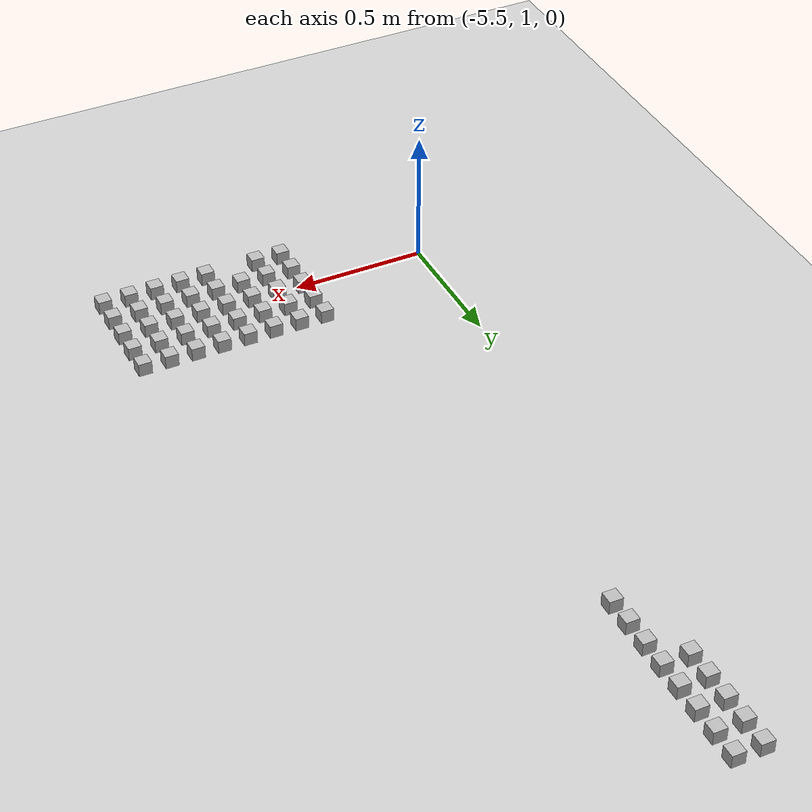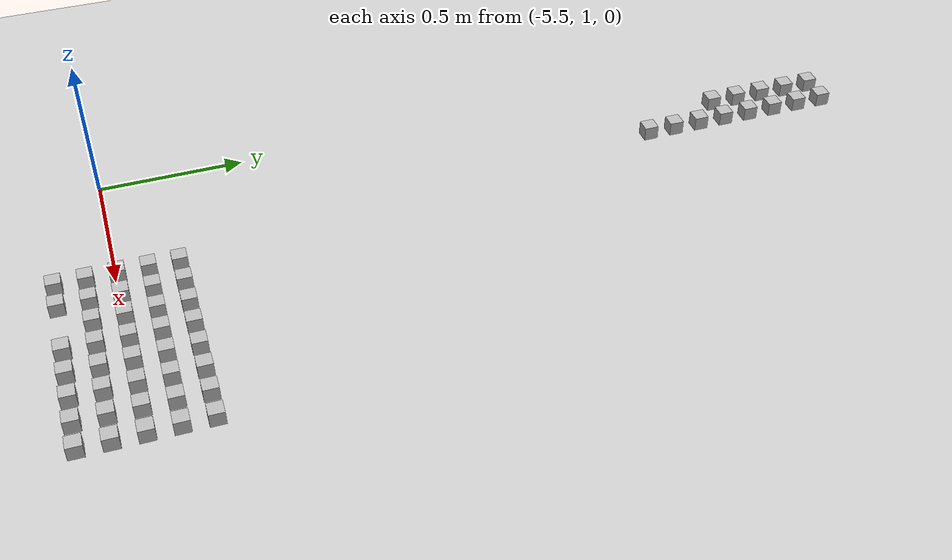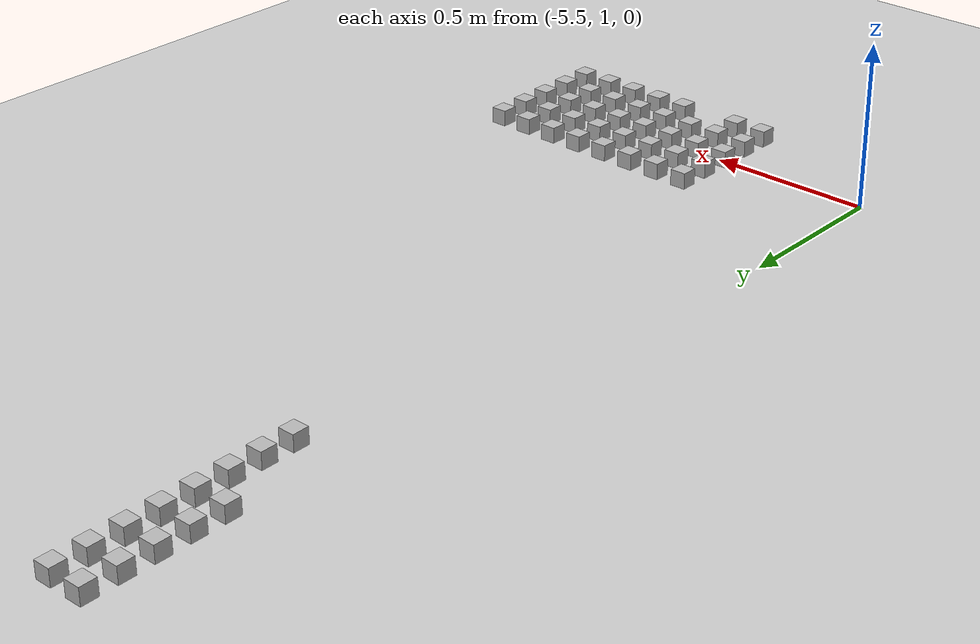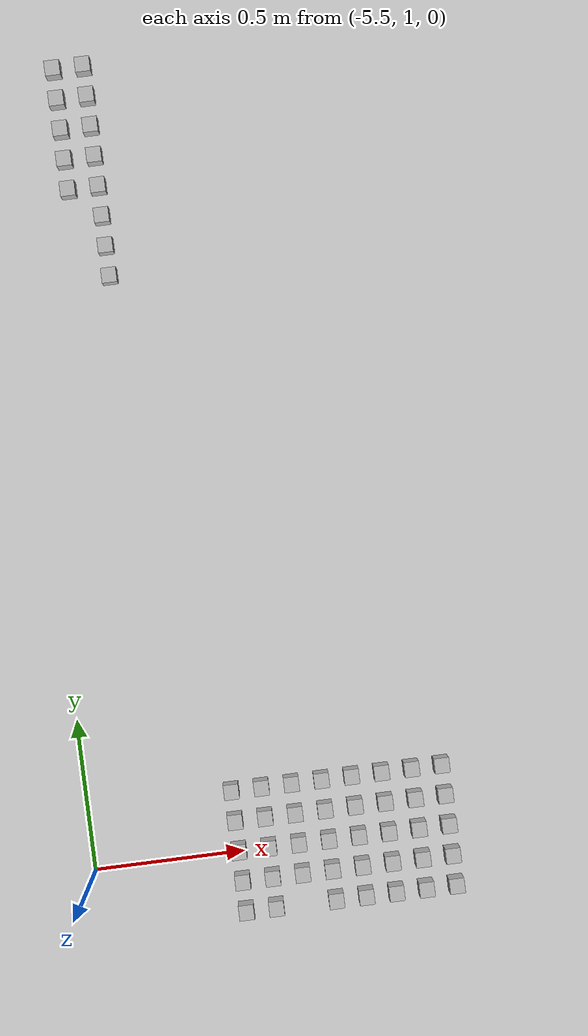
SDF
<sdf version="1.4">
 <world name="default">
  <model name="ground_plane">
   <static>1</static>
   <link name="link">
    <collision name="collision">
     <geometry><plane><normal>0 0 1</normal><size>100 100</size></plane></geometry>
     <surface><friction><ode><mu>100</mu><mu2>50</mu2></ode></friction></surface>
    </collision>
    <visual name="visual">
     <cast_shadows>0</cast_shadows>
     <geometry><plane><normal>0 0 1</normal><size>100 100</size></plane></geometry>
     <material>
      <script><uri>file://media/materials/scripts/gazebo.material</uri><name>Gazebo/Grey</name></script>
     </material>
    </visual>
    <velocity_decay><linear>0</linear><angular>0</angular></velocity_decay>
   </link>
  </model>
  <model name="at24">
   <static>0</static>
   <link name="link">
    <inertial>
     <mass>0.01</mass>
     <inertia><ixx>4e-05</ixx><ixy>0</ixy><ixz>0</ixz><iyy>4e-05</iyy><iyz>0</iyz><izz>4e-05</izz></inertia>
    </inertial>
    <visual name="visual">
     <transparency>0.1</transparency>
     <geometry><box><size>0.05 0.05 0.05</size></box></geometry>
     <material>
      <script>
       <uri>model://at0/materials/scripts</uri>
       <uri>model://at0/materials/textures</uri>
       <name>at0/Diffuse</name>
      </script>
     </material>
    </visual>
    <collision name="collision">
     <geometry><box><size>0.05 0.05 0.05</size></box></geometry>
     <surface><friction><ode><mu>0.8</mu><mu2>0.7</mu2></ode></friction></surface>
    </collision>
    <velocity_decay><linear>0</linear><angular>0</angular></velocity_decay>
   </link>
   <pose>-5.01833 0.809653 0.024993 -2.9e-05 -2.9e-05 6e-06</pose>
  </model>
  <model name="at25">
   <static>0</static>
   <link name="link">
    <inertial>
     <mass>0.01</mass>
     <inertia><ixx>4e-05</ixx><ixy>0</ixy><ixz>0</ixz><iyy>4e-05</iyy><iyz>0</iyz><izz>4e-05</izz></inertia>
    </inertial>
    <visual name="visual">
     <transparency>0.1</transparency>
     <geometry><box><size>0.05 0.05 0.05</size></box></geometry>
     <material>
      <script>
       <uri>model://at0/materials/scripts</uri>
       <uri>model://at0/materials/textures</uri>
       <name>at0/Diffuse</name>
      </script>
     </material>
    </visual>
    <collision name="collision">
     <geometry><box><size>0.05 0.05 0.05</size></box></geometry>
     <surface><friction><ode><mu>0.8</mu><mu2>0.7</mu2></ode></friction></surface>
    </collision>
    <velocity_decay><linear>0</linear><angular>0</angular></velocity_decay>
   </link>
   <pose>-4.91833 0.809653 0.024993 -2.9e-05 -2.9e-05 6e-06</pose>
  </model>
  <model name="at27">
   <static>0</static>
   <link name="link">
    <inertial>
     <mass>0.01</mass>
     <inertia><ixx>4e-05</ixx><ixy>0</ixy><ixz>0</ixz><iyy>4e-05</iyy><iyz>0</iyz><izz>4e-05</izz></inertia>
    </inertial>
    <visual name="visual">
     <transparency>0.1</transparency>
     <geometry><box><size>0.05 0.05 0.05</size></box></geometry>
     <material>
      <script>
       <uri>model://at0/materials/scripts</uri>
       <uri>model://at0/materials/textures</uri>
       <name>at0/Diffuse</name>
      </script>
     </material>
    </visual>
    <collision name="collision">
     <geometry><box><size>0.05 0.05 0.05</size></box></geometry>
     <surface><friction><ode><mu>0.8</mu><mu2>0.7</mu2></ode></friction></surface>
    </collision>
    <velocity_decay><linear>0</linear><angular>0</angular></velocity_decay>
   </link>
   <pose>-4.71833 0.809652 0.024997 2.9e-05 2.9e-05 6e-06</pose>
  </model>
  <model name="at28">
   <static>0</static>
   <link name="link">
    <inertial>
     <mass>0.01</mass>
     <inertia><ixx>4e-05</ixx><ixy>0</ixy><ixz>0</ixz><iyy>4e-05</iyy><iyz>0</iyz><izz>4e-05</izz></inertia>
    </inertial>
    <visual name="visual">
     <transparency>0.1</transparency>
     <geometry><box><size>0.05 0.05 0.05</size></box></geometry>
     <material>
      <script>
       <uri>model://at0/materials/scripts</uri>
       <uri>model://at0/materials/textures</uri>
       <name>at0/Diffuse</name>
      </script>
     </material>
    </visual>
    <collision name="collision">
     <geometry><box><size>0.05 0.05 0.05</size></box></geometry>
     <surface><friction><ode><mu>0.8</mu><mu2>0.7</mu2></ode></friction></surface>
    </collision>
    <velocity_decay><linear>0</linear><angular>0</angular></velocity_decay>
   </link>
   <pose>-4.61833 0.809652 0.024997 2.9e-05 2.9e-05 6e-06</pose>
  </model>
  <model name="at29">
   <static>0</static>
   <link name="link">
    <inertial>
     <mass>0.01</mass>
     <inertia><ixx>4e-05</ixx><ixy>0</ixy><ixz>0</ixz><iyy>4e-05</iyy><iyz>0</iyz><izz>4e-05</izz></inertia>
    </inertial>
    <visual name="visual">
     <transparency>0.1</transparency>
     <geometry><box><size>0.05 0.05 0.05</size></box></geometry>
     <material>
      <script>
       <uri>model://at0/materials/scripts</uri>
       <uri>model://at0/materials/textures</uri>
       <name>at0/Diffuse</name>
      </script>
     </material>
    </visual>
    <collision name="collision">
     <geometry><box><size>0.05 0.05 0.05</size></box></geometry>
     <surface><friction><ode><mu>0.8</mu><mu2>0.7</mu2></ode></friction></surface>
    </collision>
    <velocity_decay><linear>0</linear><angular>0</angular></velocity_decay>
   </link>
   <pose>-4.51833 0.809652 0.024997 2.9e-05 2.9e-05 6e-06</pose>
  </model>
  <model name="at30">
   <static>0</static>
   <link name="link">
    <inertial>
     <mass>0.01</mass>
     <inertia><ixx>4e-05</ixx><ixy>0</ixy><ixz>0</ixz><iyy>4e-05</iyy><iyz>0</iyz><izz>4e-05</izz></inertia>
    </inertial>
    <visual name="visual">
     <transparency>0.1</transparency>
     <geometry><box><size>0.05 0.05 0.05</size></box></geometry>
     <material>
      <script>
       <uri>model://at0/materials/scripts</uri>
       <uri>model://at0/materials/textures</uri>
       <name>at0/Diffuse</name>
      </script>
     </material>
    </visual>
    <collision name="collision">
     <geometry><box><size>0.05 0.05 0.05</size></box></geometry>
     <surface><friction><ode><mu>0.8</mu><mu2>0.7</mu2></ode></friction></surface>
    </collision>
    <velocity_decay><linear>0</linear><angular>0</angular></velocity_decay>
   </link>
   <pose>-4.41833 0.809653 0.024993 -2.9e-05 -2.9e-05 6e-06</pose>
  </model>
  <model name="at31">
   <static>0</static>
   <link name="link">
    <inertial>
     <mass>0.01</mass>
     <inertia><ixx>4e-05</ixx><ixy>0</ixy><ixz>0</ixz><iyy>4e-05</iyy><iyz>0</iyz><izz>4e-05</izz></inertia>
    </inertial>
    <visual name="visual">
     <transparency>0.1</transparency>
     <geometry><box><size>0.05 0.05 0.05</size></box></geometry>
     <material>
      <script>
       <uri>model://at0/materials/scripts</uri>
       <uri>model://at0/materials/textures</uri>
       <name>at0/Diffuse</name>
      </script>
     </material>
    </visual>
    <collision name="collision">
     <geometry><box><size>0.05 0.05 0.05</size></box></geometry>
     <surface><friction><ode><mu>0.8</mu><mu2>0.7</mu2></ode></friction></surface>
    </collision>
    <velocity_decay><linear>0</linear><angular>0</angular></velocity_decay>
   </link>
   <pose>-4.31833 0.809652 0.024997 2.9e-05 2.9e-05 6e-06</pose>
  </model>
  <model name="at32">
   <static>0</static>
   <link name="link">
    <inertial>
     <mass>0.01</mass>
     <inertia><ixx>4e-05</ixx><ixy>0</ixy><ixz>0</ixz><iyy>4e-05</iyy><iyz>0</iyz><izz>4e-05</izz></inertia>
    </inertial>
    <visual name="visual">
     <transparency>0.1</transparency>
     <geometry><box><size>0.05 0.05 0.05</size></box></geometry>
     <material>
      <script>
       <uri>model://at0/materials/scripts</uri>
       <uri>model://at0/materials/textures</uri>
       <name>at0/Diffuse</name>
      </script>
     </material>
    </visual>
    <collision name="collision">
     <geometry><box><size>0.05 0.05 0.05</size></box></geometry>
     <surface><friction><ode><mu>0.8</mu><mu2>0.7</mu2></ode></friction></surface>
    </collision>
    <velocity_decay><linear>0</linear><angular>0</angular></velocity_decay>
   </link>
   <pose>-5.01833 0.909652 0.024997 2.9e-05 2.9e-05 5e-06</pose>
  </model>
  <model name="at33">
   <static>0</static>
   <link name="link">
    <inertial>
     <mass>0.01</mass>
     <inertia><ixx>4e-05</ixx><ixy>0</ixy><ixz>0</ixz><iyy>4e-05</iyy><iyz>0</iyz><izz>4e-05</izz></inertia>
    </inertial>
    <visual name="visual">
     <transparency>0.1</transparency>
     <geometry><box><size>0.05 0.05 0.05</size></box></geometry>
     <material>
      <script>
       <uri>model://at0/materials/scripts</uri>
       <uri>model://at0/materials/textures</uri>
       <name>at0/Diffuse</name>
      </script>
     </material>
    </visual>
    <collision name="collision">
     <geometry><box><size>0.05 0.05 0.05</size></box></geometry>
     <surface><friction><ode><mu>0.8</mu><mu2>0.7</mu2></ode></friction></surface>
    </collision>
    <velocity_decay><linear>0</linear><angular>0</angular></velocity_decay>
   </link>
   <pose>-4.91833 0.909652 0.024997 2.9e-05 2.9e-05 5e-06</pose>
  </model>
  <model name="at34">
   <static>0</static>
   <link name="link">
    <inertial>
     <mass>0.01</mass>
     <inertia><ixx>4e-05</ixx><ixy>0</ixy><ixz>0</ixz><iyy>4e-05</iyy><iyz>0</iyz><izz>4e-05</izz></inertia>
    </inertial>
    <visual name="visual">
     <transparency>0.1</transparency>
     <geometry><box><size>0.05 0.05 0.05</size></box></geometry>
     <material>
      <script>
       <uri>model://at0/materials/scripts</uri>
       <uri>model://at0/materials/textures</uri>
       <name>at0/Diffuse</name>
      </script>
     </material>
    </visual>
    <collision name="collision">
     <geometry><box><size>0.05 0.05 0.05</size></box></geometry>
     <surface><friction><ode><mu>0.8</mu><mu2>0.7</mu2></ode></friction></surface>
    </collision>
    <velocity_decay><linear>0</linear><angular>0</angular></velocity_decay>
   </link>
   <pose>-4.81833 0.909652 0.024997 2.9e-05 2.9e-05 5e-06</pose>
  </model>
  <model name="at35">
   <static>0</static>
   <link name="link">
    <inertial>
     <mass>0.01</mass>
     <inertia><ixx>4e-05</ixx><ixy>0</ixy><ixz>0</ixz><iyy>4e-05</iyy><iyz>0</iyz><izz>4e-05</izz></inertia>
    </inertial>
    <visual name="visual">
     <transparency>0.1</transparency>
     <geometry><box><size>0.05 0.05 0.05</size></box></geometry>
     <material>
      <script>
       <uri>model://at0/materials/scripts</uri>
       <uri>model://at0/materials/textures</uri>
       <name>at0/Diffuse</name>
      </script>
     </material>
    </visual>
    <collision name="collision">
     <geometry><box><size>0.05 0.05 0.05</size></box></geometry>
     <surface><friction><ode><mu>0.8</mu><mu2>0.7</mu2></ode></friction></surface>
    </collision>
    <velocity_decay><linear>0</linear><angular>0</angular></velocity_decay>
   </link>
   <pose>-4.71833 0.909653 0.024993 -2.9e-05 -2.9e-05 5e-06</pose>
  </model>
  <model name="at36">
   <static>0</static>
   <link name="link">
    <inertial>
     <mass>0.01</mass>
     <inertia><ixx>4e-05</ixx><ixy>0</ixy><ixz>0</ixz><iyy>4e-05</iyy><iyz>0</iyz><izz>4e-05</izz></inertia>
    </inertial>
    <visual name="visual">
     <transparency>0.1</transparency>
     <geometry><box><size>0.05 0.05 0.05</size></box></geometry>
     <material>
      <script>
       <uri>model://at0/materials/scripts</uri>
       <uri>model://at0/materials/textures</uri>
       <name>at0/Diffuse</name>
      </script>
     </material>
    </visual>
    <collision name="collision">
     <geometry><box><size>0.05 0.05 0.05</size></box></geometry>
     <surface><friction><ode><mu>0.8</mu><mu2>0.7</mu2></ode></friction></surface>
    </collision>
    <velocity_decay><linear>0</linear><angular>0</angular></velocity_decay>
   </link>
   <pose>-4.61833 0.909652 0.024997 2.9e-05 2.9e-05 5e-06</pose>
  </model>
  <model name="at37">
   <static>0</static>
   <link name="link">
    <inertial>
     <mass>0.01</mass>
     <inertia><ixx>4e-05</ixx><ixy>0</ixy><ixz>0</ixz><iyy>4e-05</iyy><iyz>0</iyz><izz>4e-05</izz></inertia>
    </inertial>
    <visual name="visual">
     <transparency>0.1</transparency>
     <geometry><box><size>0.05 0.05 0.05</size></box></geometry>
     <material>
      <script>
       <uri>model://at0/materials/scripts</uri>
       <uri>model://at0/materials/textures</uri>
       <name>at0/Diffuse</name>
      </script>
     </material>
    </visual>
    <collision name="collision">
     <geometry><box><size>0.05 0.05 0.05</size></box></geometry>
     <surface><friction><ode><mu>0.8</mu><mu2>0.7</mu2></ode></friction></surface>
    </collision>
    <velocity_decay><linear>0</linear><angular>0</angular></velocity_decay>
   </link>
   <pose>-4.51833 0.909653 0.024993 -2.9e-05 -2.9e-05 5e-06</pose>
  </model>
  <model name="at38">
   <static>0</static>
   <link name="link">
    <inertial>
     <mass>0.01</mass>
     <inertia><ixx>4e-05</ixx><ixy>0</ixy><ixz>0</ixz><iyy>4e-05</iyy><iyz>0</iyz><izz>4e-05</izz></inertia>
    </inertial>
    <visual name="visual">
     <transparency>0.1</transparency>
     <geometry><box><size>0.05 0.05 0.05</size></box></geometry>
     <material>
      <script>
       <uri>model://at0/materials/scripts</uri>
       <uri>model://at0/materials/textures</uri>
       <name>at0/Diffuse</name>
      </script>
     </material>
    </visual>
    <collision name="collision">
     <geometry><box><size>0.05 0.05 0.05</size></box></geometry>
     <surface><friction><ode><mu>0.8</mu><mu2>0.7</mu2></ode></friction></surface>
    </collision>
    <velocity_decay><linear>0</linear><angular>0</angular></velocity_decay>
   </link>
   <pose>-4.41833 0.909653 0.024993 -2.9e-05 -2.9e-05 5e-06</pose>
  </model>
  <model name="at39">
   <static>0</static>
   <link name="link">
    <inertial>
     <mass>0.01</mass>
     <inertia><ixx>4e-05</ixx><ixy>0</ixy><ixz>0</ixz><iyy>4e-05</iyy><iyz>0</iyz><izz>4e-05</izz></inertia>
    </inertial>
    <visual name="visual">
     <transparency>0.1</transparency>
     <geometry><box><size>0.05 0.05 0.05</size></box></geometry>
     <material>
      <script>
       <uri>model://at0/materials/scripts</uri>
       <uri>model://at0/materials/textures</uri>
       <name>at0/Diffuse</name>
      </script>
     </material>
    </visual>
    <collision name="collision">
     <geometry><box><size>0.05 0.05 0.05</size></box></geometry>
     <surface><friction><ode><mu>0.8</mu><mu2>0.7</mu2></ode></friction></surface>
    </collision>
    <velocity_decay><linear>0</linear><angular>0</angular></velocity_decay>
   </link>
   <pose>-4.31833 0.909653 0.024993 -2.9e-05 -2.9e-05 5e-06</pose>
  </model>
  <model name="at40">
   <static>0</static>
   <link name="link">
    <inertial>
     <mass>0.01</mass>
     <inertia><ixx>4e-05</ixx><ixy>0</ixy><ixz>0</ixz><iyy>4e-05</iyy><iyz>0</iyz><izz>4e-05</izz></inertia>
    </inertial>
    <visual name="visual">
     <transparency>0.1</transparency>
     <geometry><box><size>0.05 0.05 0.05</size></box></geometry>
     <material>
      <script>
       <uri>model://at0/materials/scripts</uri>
       <uri>model://at0/materials/textures</uri>
       <name>at0/Diffuse</name>
      </script>
     </material>
    </visual>
    <collision name="collision">
     <geometry><box><size>0.05 0.05 0.05</size></box></geometry>
     <surface><friction><ode><mu>0.8</mu><mu2>0.7</mu2></ode></friction></surface>
    </collision>
    <velocity_decay><linear>0</linear><angular>0</angular></velocity_decay>
   </link>
   <pose>-5.01833 1.00965 0.024997 2.9e-05 2.9e-05 5e-06</pose>
  </model>
  <model name="at41">
   <static>0</static>
   <link name="link">
    <inertial>
     <mass>0.01</mass>
     <inertia><ixx>4e-05</ixx><ixy>0</ixy><ixz>0</ixz><iyy>4e-05</iyy><iyz>0</iyz><izz>4e-05</izz></inertia>
    </inertial>
    <visual name="visual">
     <transparency>0.1</transparency>
     <geometry><box><size>0.05 0.05 0.05</size></box></geometry>
     <material>
      <script>
       <uri>model://at0/materials/scripts</uri>
       <uri>model://at0/materials/textures</uri>
       <name>at0/Diffuse</name>
      </script>
     </material>
    </visual>
    <collision name="collision">
     <geometry><box><size>0.05 0.05 0.05</size></box></geometry>
     <surface><friction><ode><mu>0.8</mu><mu2>0.7</mu2></ode></friction></surface>
    </collision>
    <velocity_decay><linear>0</linear><angular>0</angular></velocity_decay>
   </link>
   <pose>-4.91833 1.00965 0.024997 2.9e-05 2.9e-05 5e-06</pose>
  </model>
  <model name="at42">
   <static>0</static>
   <link name="link">
    <inertial>
     <mass>0.01</mass>
     <inertia><ixx>4e-05</ixx><ixy>0</ixy><ixz>0</ixz><iyy>4e-05</iyy><iyz>0</iyz><izz>4e-05</izz></inertia>
    </inertial>
    <visual name="visual">
     <transparency>0.1</transparency>
     <geometry><box><size>0.05 0.05 0.05</size></box></geometry>
     <material>
      <script>
       <uri>model://at0/materials/scripts</uri>
       <uri>model://at0/materials/textures</uri>
       <name>at0/Diffuse</name>
      </script>
     </material>
    </visual>
    <collision name="collision">
     <geometry><box><size>0.05 0.05 0.05</size></box></geometry>
     <surface><friction><ode><mu>0.8</mu><mu2>0.7</mu2></ode></friction></surface>
    </collision>
    <velocity_decay><linear>0</linear><angular>0</angular></velocity_decay>
   </link>
   <pose>-4.81833 1.00965 0.024997 2.9e-05 2.9e-05 5e-06</pose>
  </model>
  <model name="at43">
   <static>0</static>
   <link name="link">
    <inertial>
     <mass>0.01</mass>
     <inertia><ixx>4e-05</ixx><ixy>0</ixy><ixz>0</ixz><iyy>4e-05</iyy><iyz>0</iyz><izz>4e-05</izz></inertia>
    </inertial>
    <visual name="visual">
     <transparency>0.1</transparency>
     <geometry><box><size>0.05 0.05 0.05</size></box></geometry>
     <material>
      <script>
       <uri>model://at0/materials/scripts</uri>
       <uri>model://at0/materials/textures</uri>
       <name>at0/Diffuse</name>
      </script>
     </material>
    </visual>
    <collision name="collision">
     <geometry><box><size>0.05 0.05 0.05</size></box></geometry>
     <surface><friction><ode><mu>0.8</mu><mu2>0.7</mu2></ode></friction></surface>
    </collision>
    <velocity_decay><linear>0</linear><angular>0</angular></velocity_decay>
   </link>
   <pose>-4.71833 1.00965 0.024997 2.9e-05 2.9e-05 5e-06</pose>
  </model>
  <model name="at44">
   <static>0</static>
   <link name="link">
    <inertial>
     <mass>0.01</mass>
     <inertia><ixx>4e-05</ixx><ixy>0</ixy><ixz>0</ixz><iyy>4e-05</iyy><iyz>0</iyz><izz>4e-05</izz></inertia>
    </inertial>
    <visual name="visual">
     <transparency>0.1</transparency>
     <geometry><box><size>0.05 0.05 0.05</size></box></geometry>
     <material>
      <script>
       <uri>model://at0/materials/scripts</uri>
       <uri>model://at0/materials/textures</uri>
       <name>at0/Diffuse</name>
      </script>
     </material>
    </visual>
    <collision name="collision">
     <geometry><box><size>0.05 0.05 0.05</size></box></geometry>
     <surface><friction><ode><mu>0.8</mu><mu2>0.7</mu2></ode></friction></surface>
    </collision>
    <velocity_decay><linear>0</linear><angular>0</angular></velocity_decay>
   </link>
   <pose>-4.61833 1.00965 0.024997 2.9e-05 2.9e-05 5e-06</pose>
  </model>
  <model name="at45">
   <static>0</static>
   <link name="link">
    <inertial>
     <mass>0.01</mass>
     <inertia><ixx>4e-05</ixx><ixy>0</ixy><ixz>0</ixz><iyy>4e-05</iyy><iyz>0</iyz><izz>4e-05</izz></inertia>
    </inertial>
    <visual name="visual">
     <transparency>0.1</transparency>
     <geometry><box><size>0.05 0.05 0.05</size></box></geometry>
     <material>
      <script>
       <uri>model://at0/materials/scripts</uri>
       <uri>model://at0/materials/textures</uri>
       <name>at0/Diffuse</name>
      </script>
     </material>
    </visual>
    <collision name="collision">
     <geometry><box><size>0.05 0.05 0.05</size></box></geometry>
     <surface><friction><ode><mu>0.8</mu><mu2>0.7</mu2></ode></friction></surface>
    </collision>
    <velocity_decay><linear>0</linear><angular>0</angular></velocity_decay>
   </link>
   <pose>-4.51833 1.00965 0.024993 -2.9e-05 -2.9e-05 5e-06</pose>
  </model>
  <model name="at46">
   <static>0</static>
   <link name="link">
    <inertial>
     <mass>0.01</mass>
     <inertia><ixx>4e-05</ixx><ixy>0</ixy><ixz>0</ixz><iyy>4e-05</iyy><iyz>0</iyz><izz>4e-05</izz></inertia>
    </inertial>
    <visual name="visual">
     <transparency>0.1</transparency>
     <geometry><box><size>0.05 0.05 0.05</size></box></geometry>
     <material>
      <script>
       <uri>model://at0/materials/scripts</uri>
       <uri>model://at0/materials/textures</uri>
       <name>at0/Diffuse</name>
      </script>
     </material>
    </visual>
    <collision name="collision">
     <geometry><box><size>0.05 0.05 0.05</size></box></geometry>
     <surface><friction><ode><mu>0.8</mu><mu2>0.7</mu2></ode></friction></surface>
    </collision>
    <velocity_decay><linear>0</linear><angular>0</angular></velocity_decay>
   </link>
   <pose>-4.41833 1.00965 0.024993 -2.9e-05 -2.9e-05 5e-06</pose>
  </model>
  <model name="at47">
   <static>0</static>
   <link name="link">
    <inertial>
     <mass>0.01</mass>
     <inertia><ixx>4e-05</ixx><ixy>0</ixy><ixz>0</ixz><iyy>4e-05</iyy><iyz>0</iyz><izz>4e-05</izz></inertia>
    </inertial>
    <visual name="visual">
     <transparency>0.1</transparency>
     <geometry><box><size>0.05 0.05 0.05</size></box></geometry>
     <material>
      <script>
       <uri>model://at0/materials/scripts</uri>
       <uri>model://at0/materials/textures</uri>
       <name>at0/Diffuse</name>
      </script>
     </material>
    </visual>
    <collision name="collision">
     <geometry><box><size>0.05 0.05 0.05</size></box></geometry>
     <surface><friction><ode><mu>0.8</mu><mu2>0.7</mu2></ode></friction></surface>
    </collision>
    <velocity_decay><linear>0</linear><angular>0</angular></velocity_decay>
   </link>
   <pose>-4.31833 1.00965 0.024997 2.9e-05 2.9e-05 5e-06</pose>
  </model>
  <model name="at48">
   <static>0</static>
   <link name="link">
    <inertial>
     <mass>0.01</mass>
     <inertia><ixx>4e-05</ixx><ixy>0</ixy><ixz>0</ixz><iyy>4e-05</iyy><iyz>0</iyz><izz>4e-05</izz></inertia>
    </inertial>
    <visual name="visual">
     <transparency>0.1</transparency>
     <geometry><box><size>0.05 0.05 0.05</size></box></geometry>
     <material>
      <script>
       <uri>model://at0/materials/scripts</uri>
       <uri>model://at0/materials/textures</uri>
       <name>at0/Diffuse</name>
      </script>
     </material>
    </visual>
    <collision name="collision">
     <geometry><box><size>0.05 0.05 0.05</size></box></geometry>
     <surface><friction><ode><mu>0.8</mu><mu2>0.7</mu2></ode></friction></surface>
    </collision>
    <velocity_decay><linear>0</linear><angular>0</angular></velocity_decay>
   </link>
   <pose>-5.01833 1.10965 0.024993 -2.9e-05 -2.9e-05 5e-06</pose>
  </model>
  <model name="at49">
   <static>0</static>
   <link name="link">
    <inertial>
     <mass>0.01</mass>
     <inertia><ixx>4e-05</ixx><ixy>0</ixy><ixz>0</ixz><iyy>4e-05</iyy><iyz>0</iyz><izz>4e-05</izz></inertia>
    </inertial>
    <visual name="visual">
     <transparency>0.1</transparency>
     <geometry><box><size>0.05 0.05 0.05</size></box></geometry>
     <material>
      <script>
       <uri>model://at0/materials/scripts</uri>
       <uri>model://at0/materials/textures</uri>
       <name>at0/Diffuse</name>
      </script>
     </material>
    </visual>
    <collision name="collision">
     <geometry><box><size>0.05 0.05 0.05</size></box></geometry>
     <surface><friction><ode><mu>0.8</mu><mu2>0.7</mu2></ode></friction></surface>
    </collision>
    <velocity_decay><linear>0</linear><angular>0</angular></velocity_decay>
   </link>
   <pose>-4.91833 1.10965 0.024997 2.9e-05 2.9e-05 4e-06</pose>
  </model>
  <model name="at50">
   <static>0</static>
   <link name="link">
    <inertial>
     <mass>0.01</mass>
     <inertia><ixx>4e-05</ixx><ixy>0</ixy><ixz>0</ixz><iyy>4e-05</iyy><iyz>0</iyz><izz>4e-05</izz></inertia>
    </inertial>
    <visual name="visual">
     <transparency>0.1</transparency>
     <geometry><box><size>0.05 0.05 0.05</size></box></geometry>
     <material>
      <script>
       <uri>model://at0/materials/scripts</uri>
       <uri>model://at0/materials/textures</uri>
       <name>at0/Diffuse</name>
      </script>
     </material>
    </visual>
    <collision name="collision">
     <geometry><box><size>0.05 0.05 0.05</size></box></geometry>
     <surface><friction><ode><mu>0.8</mu><mu2>0.7</mu2></ode></friction></surface>
    </collision>
    <velocity_decay><linear>0</linear><angular>0</angular></velocity_decay>
   </link>
   <pose>-4.81833 1.10965 0.024993 -2.9e-05 -2.9e-05 4e-06</pose>
  </model>
  <model name="at51">
   <static>0</static>
   <link name="link">
    <inertial>
     <mass>0.01</mass>
     <inertia><ixx>4e-05</ixx><ixy>0</ixy><ixz>0</ixz><iyy>4e-05</iyy><iyz>0</iyz><izz>4e-05</izz></inertia>
    </inertial>
    <visual name="visual">
     <transparency>0.1</transparency>
     <geometry><box><size>0.05 0.05 0.05</size></box></geometry>
     <material>
      <script>
       <uri>model://at0/materials/scripts</uri>
       <uri>model://at0/materials/textures</uri>
       <name>at0/Diffuse</name>
      </script>
     </material>
    </visual>
    <collision name="collision">
     <geometry><box><size>0.05 0.05 0.05</size></box></geometry>
     <surface><friction><ode><mu>0.8</mu><mu2>0.7</mu2></ode></friction></surface>
    </collision>
    <velocity_decay><linear>0</linear><angular>0</angular></velocity_decay>
   </link>
   <pose>-4.71833 1.10965 0.024993 -2.9e-05 -2.9e-05 4e-06</pose>
  </model>
  <model name="at52">
   <static>0</static>
   <link name="link">
    <inertial>
     <mass>0.01</mass>
     <inertia><ixx>4e-05</ixx><ixy>0</ixy><ixz>0</ixz><iyy>4e-05</iyy><iyz>0</iyz><izz>4e-05</izz></inertia>
    </inertial>
    <visual name="visual">
     <transparency>0.1</transparency>
     <geometry><box><size>0.05 0.05 0.05</size></box></geometry>
     <material>
      <script>
       <uri>model://at0/materials/scripts</uri>
       <uri>model://at0/materials/textures</uri>
       <name>at0/Diffuse</name>
      </script>
     </material>
    </visual>
    <collision name="collision">
     <geometry><box><size>0.05 0.05 0.05</size></box></geometry>
     <surface><friction><ode><mu>0.8</mu><mu2>0.7</mu2></ode></friction></surface>
    </collision>
    <velocity_decay><linear>0</linear><angular>0</angular></velocity_decay>
   </link>
   <pose>-4.61833 1.10965 0.024993 -2.9e-05 -2.9e-05 4e-06</pose>
  </model>
  <model name="at53">
   <static>0</static>
   <link name="link">
    <inertial>
     <mass>0.01</mass>
     <inertia><ixx>4e-05</ixx><ixy>0</ixy><ixz>0</ixz><iyy>4e-05</iyy><iyz>0</iyz><izz>4e-05</izz></inertia>
    </inertial>
    <visual name="visual">
     <transparency>0.1</transparency>
     <geometry><box><size>0.05 0.05 0.05</size></box></geometry>
     <material>
      <script>
       <uri>model://at0/materials/scripts</uri>
       <uri>model://at0/materials/textures</uri>
       <name>at0/Diffuse</name>
      </script>
     </material>
    </visual>
    <collision name="collision">
     <geometry><box><size>0.05 0.05 0.05</size></box></geometry>
     <surface><friction><ode><mu>0.8</mu><mu2>0.7</mu2></ode></friction></surface>
    </collision>
    <velocity_decay><linear>0</linear><angular>0</angular></velocity_decay>
   </link>
   <pose>-4.51833 1.10965 0.024997 2.9e-05 2.9e-05 4e-06</pose>
  </model>
  <model name="at54">
   <static>0</static>
   <link name="link">
    <inertial>
     <mass>0.01</mass>
     <inertia><ixx>4e-05</ixx><ixy>0</ixy><ixz>0</ixz><iyy>4e-05</iyy><iyz>0</iyz><izz>4e-05</izz></inertia>
    </inertial>
    <visual name="visual">
     <transparency>0.1</transparency>
     <geometry><box><size>0.05 0.05 0.05</size></box></geometry>
     <material>
      <script>
       <uri>model://at0/materials/scripts</uri>
       <uri>model://at0/materials/textures</uri>
       <name>at0/Diffuse</name>
      </script>
     </material>
    </visual>
    <collision name="collision">
     <geometry><box><size>0.05 0.05 0.05</size></box></geometry>
     <surface><friction><ode><mu>0.8</mu><mu2>0.7</mu2></ode></friction></surface>
    </collision>
    <velocity_decay><linear>0</linear><angular>0</angular></velocity_decay>
   </link>
   <pose>-4.41833 1.10965 0.024993 -2.9e-05 -2.9e-05 4e-06</pose>
  </model>
  <model name="at55">
   <static>0</static>
   <link name="link">
    <inertial>
     <mass>0.01</mass>
     <inertia><ixx>4e-05</ixx><ixy>0</ixy><ixz>0</ixz><iyy>4e-05</iyy><iyz>0</iyz><izz>4e-05</izz></inertia>
    </inertial>
    <visual name="visual">
     <transparency>0.1</transparency>
     <geometry><box><size>0.05 0.05 0.05</size></box></geometry>
     <material>
      <script>
       <uri>model://at0/materials/scripts</uri>
       <uri>model://at0/materials/textures</uri>
       <name>at0/Diffuse</name>
      </script>
     </material>
    </visual>
    <collision name="collision">
     <geometry><box><size>0.05 0.05 0.05</size></box></geometry>
     <surface><friction><ode><mu>0.8</mu><mu2>0.7</mu2></ode></friction></surface>
    </collision>
    <velocity_decay><linear>0</linear><angular>0</angular></velocity_decay>
   </link>
   <pose>-4.31833 1.10965 0.024997 2.9e-05 2.9e-05 4e-06</pose>
  </model>
  <model name="at56">
   <static>0</static>
   <link name="link">
    <inertial>
     <mass>0.01</mass>
     <inertia><ixx>4e-05</ixx><ixy>0</ixy><ixz>0</ixz><iyy>4e-05</iyy><iyz>0</iyz><izz>4e-05</izz></inertia>
    </inertial>
    <visual name="visual">
     <transparency>0.1</transparency>
     <geometry><box><size>0.05 0.05 0.05</size></box></geometry>
     <material>
      <script>
       <uri>model://at0/materials/scripts</uri>
       <uri>model://at0/materials/textures</uri>
       <name>at0/Diffuse</name>
      </script>
     </material>
    </visual>
    <collision name="collision">
     <geometry><box><size>0.05 0.05 0.05</size></box></geometry>
     <surface><friction><ode><mu>0.8</mu><mu2>0.7</mu2></ode></friction></surface>
    </collision>
    <velocity_decay><linear>0</linear><angular>0</angular></velocity_decay>
   </link>
   <pose>-5.01833 1.20965 0.024997 2.9e-05 2.9e-05 4e-06</pose>
  </model>
  <model name="at57">
   <static>0</static>
   <link name="link">
    <inertial>
     <mass>0.01</mass>
     <inertia><ixx>4e-05</ixx><ixy>0</ixy><ixz>0</ixz><iyy>4e-05</iyy><iyz>0</iyz><izz>4e-05</izz></inertia>
    </inertial>
    <visual name="visual">
     <transparency>0.1</transparency>
     <geometry><box><size>0.05 0.05 0.05</size></box></geometry>
     <material>
      <script>
       <uri>model://at0/materials/scripts</uri>
       <uri>model://at0/materials/textures</uri>
       <name>at0/Diffuse</name>
      </script>
     </material>
    </visual>
    <collision name="collision">
     <geometry><box><size>0.05 0.05 0.05</size></box></geometry>
     <surface><friction><ode><mu>0.8</mu><mu2>0.7</mu2></ode></friction></surface>
    </collision>
    <velocity_decay><linear>0</linear><angular>0</angular></velocity_decay>
   </link>
   <pose>-4.91833 1.20965 0.024993 -2.9e-05 -2.9e-05 4e-06</pose>
  </model>
  <model name="at58">
   <static>0</static>
   <link name="link">
    <inertial>
     <mass>0.01</mass>
     <inertia><ixx>4e-05</ixx><ixy>0</ixy><ixz>0</ixz><iyy>4e-05</iyy><iyz>0</iyz><izz>4e-05</izz></inertia>
    </inertial>
    <visual name="visual">
     <transparency>0.1</transparency>
     <geometry><box><size>0.05 0.05 0.05</size></box></geometry>
     <material>
      <script>
       <uri>model://at0/materials/scripts</uri>
       <uri>model://at0/materials/textures</uri>
       <name>at0/Diffuse</name>
      </script>
     </material>
    </visual>
    <collision name="collision">
     <geometry><box><size>0.05 0.05 0.05</size></box></geometry>
     <surface><friction><ode><mu>0.8</mu><mu2>0.7</mu2></ode></friction></surface>
    </collision>
    <velocity_decay><linear>0</linear><angular>0</angular></velocity_decay>
   </link>
   <pose>-4.81833 1.20965 0.024993 -2.9e-05 -2.9e-05 4e-06</pose>
  </model>
  <model name="at59">
   <static>0</static>
   <link name="link">
    <inertial>
     <mass>0.01</mass>
     <inertia><ixx>4e-05</ixx><ixy>0</ixy><ixz>0</ixz><iyy>4e-05</iyy><iyz>0</iyz><izz>4e-05</izz></inertia>
    </inertial>
    <visual name="visual">
     <transparency>0.1</transparency>
     <geometry><box><size>0.05 0.05 0.05</size></box></geometry>
     <material>
      <script>
       <uri>model://at0/materials/scripts</uri>
       <uri>model://at0/materials/textures</uri>
       <name>at0/Diffuse</name>
      </script>
     </material>
    </visual>
    <collision name="collision">
     <geometry><box><size>0.05 0.05 0.05</size></box></geometry>
     <surface><friction><ode><mu>0.8</mu><mu2>0.7</mu2></ode></friction></surface>
    </collision>
    <velocity_decay><linear>0</linear><angular>0</angular></velocity_decay>
   </link>
   <pose>-4.71833 1.20965 0.024997 2.9e-05 2.9e-05 4e-06</pose>
  </model>
  <model name="at60">
   <static>0</static>
   <link name="link">
    <inertial>
     <mass>0.01</mass>
     <inertia><ixx>4e-05</ixx><ixy>0</ixy><ixz>0</ixz><iyy>4e-05</iyy><iyz>0</iyz><izz>4e-05</izz></inertia>
    </inertial>
    <visual name="visual">
     <transparency>0.1</transparency>
     <geometry><box><size>0.05 0.05 0.05</size></box></geometry>
     <material>
      <script>
       <uri>model://at0/materials/scripts</uri>
       <uri>model://at0/materials/textures</uri>
       <name>at0/Diffuse</name>
      </script>
     </material>
    </visual>
    <collision name="collision">
     <geometry><box><size>0.05 0.05 0.05</size></box></geometry>
     <surface><friction><ode><mu>0.8</mu><mu2>0.7</mu2></ode></friction></surface>
    </collision>
    <velocity_decay><linear>0</linear><angular>0</angular></velocity_decay>
   </link>
   <pose>-4.61833 1.20965 0.024993 -2.9e-05 -2.9e-05 4e-06</pose>
  </model>
  <model name="at61">
   <static>0</static>
   <link name="link">
    <inertial>
     <mass>0.01</mass>
     <inertia><ixx>4e-05</ixx><ixy>0</ixy><ixz>0</ixz><iyy>4e-05</iyy><iyz>0</iyz><izz>4e-05</izz></inertia>
    </inertial>
    <visual name="visual">
     <transparency>0.1</transparency>
     <geometry><box><size>0.05 0.05 0.05</size></box></geometry>
     <material>
      <script>
       <uri>model://at0/materials/scripts</uri>
       <uri>model://at0/materials/textures</uri>
       <name>at0/Diffuse</name>
      </script>
     </material>
    </visual>
    <collision name="collision">
     <geometry><box><size>0.05 0.05 0.05</size></box></geometry>
     <surface><friction><ode><mu>0.8</mu><mu2>0.7</mu2></ode></friction></surface>
    </collision>
    <velocity_decay><linear>0</linear><angular>0</angular></velocity_decay>
   </link>
   <pose>-4.51833 1.20965 0.024993 -2.9e-05 -2.9e-05 4e-06</pose>
  </model>
  <model name="at62">
   <static>0</static>
   <link name="link">
    <inertial>
     <mass>0.01</mass>
     <inertia><ixx>4e-05</ixx><ixy>0</ixy><ixz>0</ixz><iyy>4e-05</iyy><iyz>0</iyz><izz>4e-05</izz></inertia>
    </inertial>
    <visual name="visual">
     <transparency>0.1</transparency>
     <geometry><box><size>0.05 0.05 0.05</size></box></geometry>
     <material>
      <script>
       <uri>model://at0/materials/scripts</uri>
       <uri>model://at0/materials/textures</uri>
       <name>at0/Diffuse</name>
      </script>
     </material>
    </visual>
    <collision name="collision">
     <geometry><box><size>0.05 0.05 0.05</size></box></geometry>
     <surface><friction><ode><mu>0.8</mu><mu2>0.7</mu2></ode></friction></surface>
    </collision>
    <velocity_decay><linear>0</linear><angular>0</angular></velocity_decay>
   </link>
   <pose>-4.41833 1.20965 0.024993 -2.9e-05 -2.9e-05 4e-06</pose>
  </model>
  <model name="at63">
   <static>0</static>
   <link name="link">
    <inertial>
     <mass>0.01</mass>
     <inertia><ixx>4e-05</ixx><ixy>0</ixy><ixz>0</ixz><iyy>4e-05</iyy><iyz>0</iyz><izz>4e-05</izz></inertia>
    </inertial>
    <visual name="visual">
     <transparency>0.1</transparency>
     <geometry><box><size>0.05 0.05 0.05</size></box></geometry>
     <material>
      <script>
       <uri>model://at0/materials/scripts</uri>
       <uri>model://at0/materials/textures</uri>
       <name>at0/Diffuse</name>
      </script>
     </material>
    </visual>
    <collision name="collision">
     <geometry><box><size>0.05 0.05 0.05</size></box></geometry>
     <surface><friction><ode><mu>0.8</mu><mu2>0.7</mu2></ode></friction></surface>
    </collision>
    <velocity_decay><linear>0</linear><angular>0</angular></velocity_decay>
   </link>
   <pose>-4.31833 1.20965 0.024997 2.9e-05 2.9e-05 4e-06</pose>
  </model>
  <model name="at135">
   <static>0</static>
   <link name="link">
    <inertial>
     <mass>0.01</mass>
     <inertia><ixx>4e-05</ixx><ixy>0</ixy><ixz>0</ixz><iyy>4e-05</iyy><iyz>0</iyz><izz>4e-05</izz></inertia>
    </inertial>
    <visual name="visual">
     <transparency>0.1</transparency>
     <geometry><box><size>0.05 0.05 0.05</size></box></geometry>
     <material>
      <script>
       <uri>model://at0/materials/scripts</uri>
       <uri>model://at0/materials/textures</uri>
       <name>at0/Diffuse</name>
      </script>
     </material>
    </visual>
    <collision name="collision">
     <geometry><box><size>0.05 0.05 0.05</size></box></geometry>
     <surface><friction><ode><mu>0.8</mu><mu2>0.7</mu2></ode></friction></surface>
    </collision>
    <velocity_decay><linear>0</linear><angular>0</angular></velocity_decay>
   </link>
   <pose>-5.20443 2.95036 0.024993 -2.9e-05 -2.9e-05 2e-06</pose>
  </model>
  <model name="at143">
   <static>0</static>
   <link name="link">
    <inertial>
     <mass>0.01</mass>
     <inertia><ixx>4e-05</ixx><ixy>0</ixy><ixz>0</ixz><iyy>4e-05</iyy><iyz>0</iyz><izz>4e-05</izz></inertia>
    </inertial>
    <visual name="visual">
     <transparency>0.1</transparency>
     <geometry><box><size>0.05 0.05 0.05</size></box></geometry>
     <material>
      <script>
       <uri>model://at0/materials/scripts</uri>
       <uri>model://at0/materials/textures</uri>
       <name>at0/Diffuse</name>
      </script>
     </material>
    </visual>
    <collision name="collision">
     <geometry><box><size>0.05 0.05 0.05</size></box></geometry>
     <surface><friction><ode><mu>0.8</mu><mu2>0.7</mu2></ode></friction></surface>
    </collision>
    <velocity_decay><linear>0</linear><angular>0</angular></velocity_decay>
   </link>
   <pose>-5.20443 3.05036 0.024993 -2.9e-05 -2.9e-05 2e-06</pose>
  </model>
  <model name="at151">
   <static>0</static>
   <link name="link">
    <inertial>
     <mass>0.01</mass>
     <inertia><ixx>4e-05</ixx><ixy>0</ixy><ixz>0</ixz><iyy>4e-05</iyy><iyz>0</iyz><izz>4e-05</izz></inertia>
    </inertial>
    <visual name="visual">
     <transparency>0.1</transparency>
     <geometry><box><size>0.05 0.05 0.05</size></box></geometry>
     <material>
      <script>
       <uri>model://at0/materials/scripts</uri>
       <uri>model://at0/materials/textures</uri>
       <name>at0/Diffuse</name>
      </script>
     </material>
    </visual>
    <collision name="collision">
     <geometry><box><size>0.05 0.05 0.05</size></box></geometry>
     <surface><friction><ode><mu>0.8</mu><mu2>0.7</mu2></ode></friction></surface>
    </collision>
    <velocity_decay><linear>0</linear><angular>0</angular></velocity_decay>
   </link>
   <pose>-5.20443 3.15036 0.024997 2.9e-05 2.9e-05 2e-06</pose>
  </model>
  <model name="at158">
   <static>0</static>
   <link name="link">
    <inertial>
     <mass>0.01</mass>
     <inertia><ixx>4e-05</ixx><ixy>0</ixy><ixz>0</ixz><iyy>4e-05</iyy><iyz>0</iyz><izz>4e-05</izz></inertia>
    </inertial>
    <visual name="visual">
     <transparency>0.1</transparency>
     <geometry><box><size>0.05 0.05 0.05</size></box></geometry>
     <material>
      <script>
       <uri>model://at0/materials/scripts</uri>
       <uri>model://at0/materials/textures</uri>
       <name>at0/Diffuse</name>
      </script>
     </material>
    </visual>
    <collision name="collision">
     <geometry><box><size>0.05 0.05 0.05</size></box></geometry>
     <surface><friction><ode><mu>0.8</mu><mu2>0.7</mu2></ode></friction></surface>
    </collision>
    <velocity_decay><linear>0</linear><angular>0</angular></velocity_decay>
   </link>
   <pose>-5.30443 3.25036 0.024997 2.9e-05 2.9e-05 2e-06</pose>
  </model>
  <model name="at159">
   <static>0</static>
   <link name="link">
    <inertial>
     <mass>0.01</mass>
     <inertia><ixx>4e-05</ixx><ixy>0</ixy><ixz>0</ixz><iyy>4e-05</iyy><iyz>0</iyz><izz>4e-05</izz></inertia>
    </inertial>
    <visual name="visual">
     <transparency>0.1</transparency>
     <geometry><box><size>0.05 0.05 0.05</size></box></geometry>
     <material>
      <script>
       <uri>model://at0/materials/scripts</uri>
       <uri>model://at0/materials/textures</uri>
       <name>at0/Diffuse</name>
      </script>
     </material>
    </visual>
    <collision name="collision">
     <geometry><box><size>0.05 0.05 0.05</size></box></geometry>
     <surface><friction><ode><mu>0.8</mu><mu2>0.7</mu2></ode></friction></surface>
    </collision>
    <velocity_decay><linear>0</linear><angular>0</angular></velocity_decay>
   </link>
   <pose>-5.20443 3.25036 0.024993 -2.9e-05 -2.9e-05 2e-06</pose>
  </model>
  <model name="at166">
   <static>0</static>
   <link name="link">
    <inertial>
     <mass>0.01</mass>
     <inertia><ixx>4e-05</ixx><ixy>0</ixy><ixz>0</ixz><iyy>4e-05</iyy><iyz>0</iyz><izz>4e-05</izz></inertia>
    </inertial>
    <visual name="visual">
     <transparency>0.1</transparency>
     <geometry><box><size>0.05 0.05 0.05</size></box></geometry>
     <material>
      <script>
       <uri>model://at0/materials/scripts</uri>
       <uri>model://at0/materials/textures</uri>
       <name>at0/Diffuse</name>
      </script>
     </material>
    </visual>
    <collision name="collision">
     <geometry><box><size>0.05 0.05 0.05</size></box></geometry>
     <surface><friction><ode><mu>0.8</mu><mu2>0.7</mu2></ode></friction></surface>
    </collision>
    <velocity_decay><linear>0</linear><angular>0</angular></velocity_decay>
   </link>
   <pose>-5.30443 3.35036 0.024997 2.9e-05 2.9e-05 1e-06</pose>
  </model>
  <model name="at167">
   <static>0</static>
   <link name="link">
    <inertial>
     <mass>0.01</mass>
     <inertia><ixx>4e-05</ixx><ixy>0</ixy><ixz>0</ixz><iyy>4e-05</iyy><iyz>0</iyz><izz>4e-05</izz></inertia>
    </inertial>
    <visual name="visual">
     <transparency>0.1</transparency>
     <geometry><box><size>0.05 0.05 0.05</size></box></geometry>
     <material>
      <script>
       <uri>model://at0/materials/scripts</uri>
       <uri>model://at0/materials/textures</uri>
       <name>at0/Diffuse</name>
      </script>
     </material>
    </visual>
    <collision name="collision">
     <geometry><box><size>0.05 0.05 0.05</size></box></geometry>
     <surface><friction><ode><mu>0.8</mu><mu2>0.7</mu2></ode></friction></surface>
    </collision>
    <velocity_decay><linear>0</linear><angular>0</angular></velocity_decay>
   </link>
   <pose>-5.20443 3.35036 0.024997 2.9e-05 2.9e-05 1e-06</pose>
  </model>
  <model name="at174">
   <static>0</static>
   <link name="link">
    <inertial>
     <mass>0.01</mass>
     <inertia><ixx>4e-05</ixx><ixy>0</ixy><ixz>0</ixz><iyy>4e-05</iyy><iyz>0</iyz><izz>4e-05</izz></inertia>
    </inertial>
    <visual name="visual">
     <transparency>0.1</transparency>
     <geometry><box><size>0.05 0.05 0.05</size></box></geometry>
     <material>
      <script>
       <uri>model://at0/materials/scripts</uri>
       <uri>model://at0/materials/textures</uri>
       <name>at0/Diffuse</name>
      </script>
     </material>
    </visual>
    <collision name="collision">
     <geometry><box><size>0.05 0.05 0.05</size></box></geometry>
     <surface><friction><ode><mu>0.8</mu><mu2>0.7</mu2></ode></friction></surface>
    </collision>
    <velocity_decay><linear>0</linear><angular>0</angular></velocity_decay>
   </link>
   <pose>-5.30443 3.45036 0.024997 2.9e-05 2.9e-05 1e-06</pose>
  </model>
  <model name="at175">
   <static>0</static>
   <link name="link">
    <inertial>
     <mass>0.01</mass>
     <inertia><ixx>4e-05</ixx><ixy>0</ixy><ixz>0</ixz><iyy>4e-05</iyy><iyz>0</iyz><izz>4e-05</izz></inertia>
    </inertial>
    <visual name="visual">
     <transparency>0.1</transparency>
     <geometry><box><size>0.05 0.05 0.05</size></box></geometry>
     <material>
      <script>
       <uri>model://at0/materials/scripts</uri>
       <uri>model://at0/materials/textures</uri>
       <name>at0/Diffuse</name>
      </script>
     </material>
    </visual>
    <collision name="collision">
     <geometry><box><size>0.05 0.05 0.05</size></box></geometry>
     <surface><friction><ode><mu>0.8</mu><mu2>0.7</mu2></ode></friction></surface>
    </collision>
    <velocity_decay><linear>0</linear><angular>0</angular></velocity_decay>
   </link>
   <pose>-5.20443 3.45036 0.024997 2.9e-05 2.9e-05 1e-06</pose>
  </model>
  <model name="at182">
   <static>0</static>
   <link name="link">
    <inertial>
     <mass>0.01</mass>
     <inertia><ixx>4e-05</ixx><ixy>0</ixy><ixz>0</ixz><iyy>4e-05</iyy><iyz>0</iyz><izz>4e-05</izz></inertia>
    </inertial>
    <visual name="visual">
     <transparency>0.1</transparency>
     <geometry><box><size>0.05 0.05 0.05</size></box></geometry>
     <material>
      <script>
       <uri>model://at0/materials/scripts</uri>
       <uri>model://at0/materials/textures</uri>
       <name>at0/Diffuse</name>
      </script>
     </material>
    </visual>
    <collision name="collision">
     <geometry><box><size>0.05 0.05 0.05</size></box></geometry>
     <surface><friction><ode><mu>0.8</mu><mu2>0.7</mu2></ode></friction></surface>
    </collision>
    <velocity_decay><linear>0</linear><angular>0</angular></velocity_decay>
   </link>
   <pose>-5.30443 3.55036 0.024997 2.9e-05 2.9e-05 1e-06</pose>
  </model>
  <model name="at183">
   <static>0</static>
   <link name="link">
    <inertial>
     <mass>0.01</mass>
     <inertia><ixx>4e-05</ixx><ixy>0</ixy><ixz>0</ixz><iyy>4e-05</iyy><iyz>0</iyz><izz>4e-05</izz></inertia>
    </inertial>
    <visual name="visual">
     <transparency>0.1</transparency>
     <geometry><box><size>0.05 0.05 0.05</size></box></geometry>
     <material>
      <script>
       <uri>model://at0/materials/scripts</uri>
       <uri>model://at0/materials/textures</uri>
       <name>at0/Diffuse</name>
      </script>
     </material>
    </visual>
    <collision name="collision">
     <geometry><box><size>0.05 0.05 0.05</size></box></geometry>
     <surface><friction><ode><mu>0.8</mu><mu2>0.7</mu2></ode></friction></surface>
    </collision>
    <velocity_decay><linear>0</linear><angular>0</angular></velocity_decay>
   </link>
   <pose>-5.20443 3.55036 0.024997 2.9e-05 2.9e-05 1e-06</pose>
  </model>
  <model name="at190">
   <static>0</static>
   <link name="link">
    <inertial>
     <mass>0.01</mass>
     <inertia><ixx>4e-05</ixx><ixy>0</ixy><ixz>0</ixz><iyy>4e-05</iyy><iyz>0</iyz><izz>4e-05</izz></inertia>
    </inertial>
    <visual name="visual">
     <transparency>0.1</transparency>
     <geometry><box><size>0.05 0.05 0.05</size></box></geometry>
     <material>
      <script>
       <uri>model://at0/materials/scripts</uri>
       <uri>model://at0/materials/textures</uri>
       <name>at0/Diffuse</name>
      </script>
     </material>
    </visual>
    <collision name="collision">
     <geometry><box><size>0.05 0.05 0.05</size></box></geometry>
     <surface><friction><ode><mu>0.8</mu><mu2>0.7</mu2></ode></friction></surface>
    </collision>
    <velocity_decay><linear>0</linear><angular>0</angular></velocity_decay>
   </link>
   <pose>-5.30443 3.65036 0.024997 2.9e-05 2.9e-05 1e-06</pose>
  </model>
  <model name="at191">
   <static>0</static>
   <link name="link">
    <inertial>
     <mass>0.01</mass>
     <inertia><ixx>4e-05</ixx><ixy>0</ixy><ixz>0</ixz><iyy>4e-05</iyy><iyz>0</iyz><izz>4e-05</izz></inertia>
    </inertial>
    <visual name="visual">
     <transparency>0.1</transparency>
     <geometry><box><size>0.05 0.05 0.05</size></box></geometry>
     <material>
      <script>
       <uri>model://at0/materials/scripts</uri>
       <uri>model://at0/materials/textures</uri>
       <name>at0/Diffuse</name>
      </script>
     </material>
    </visual>
    <collision name="collision">
     <geometry><box><size>0.05 0.05 0.05</size></box></geometry>
     <surface><friction><ode><mu>0.8</mu><mu2>0.7</mu2></ode></friction></surface>
    </collision>
    <velocity_decay><linear>0</linear><angular>0</angular></velocity_decay>
   </link>
   <pose>-5.20443 3.65036 0.024997 2.9e-05 2.9e-05 1e-06</pose>
  </model>
 </world>
</sdf>
